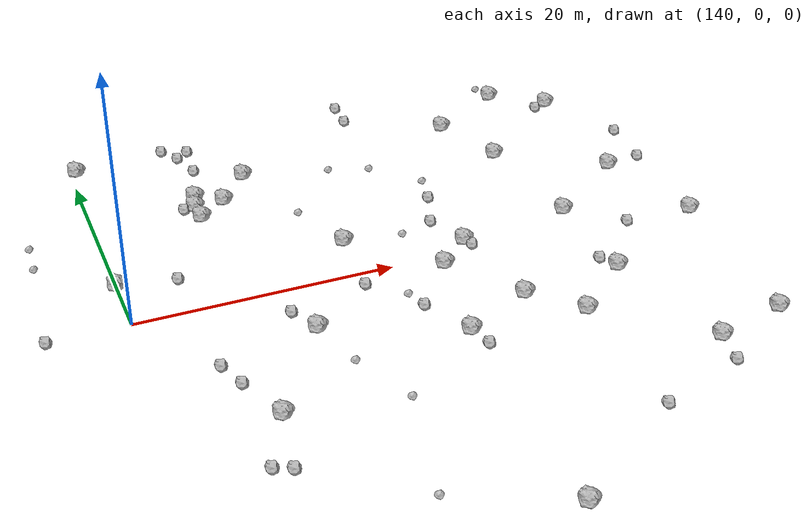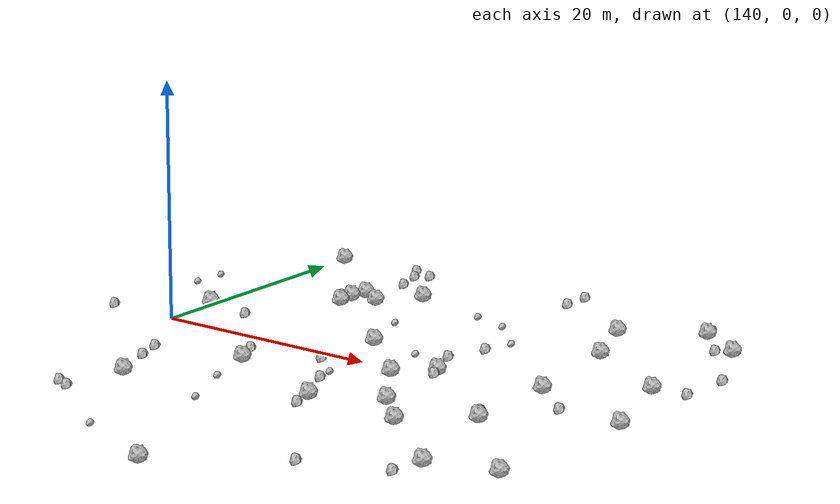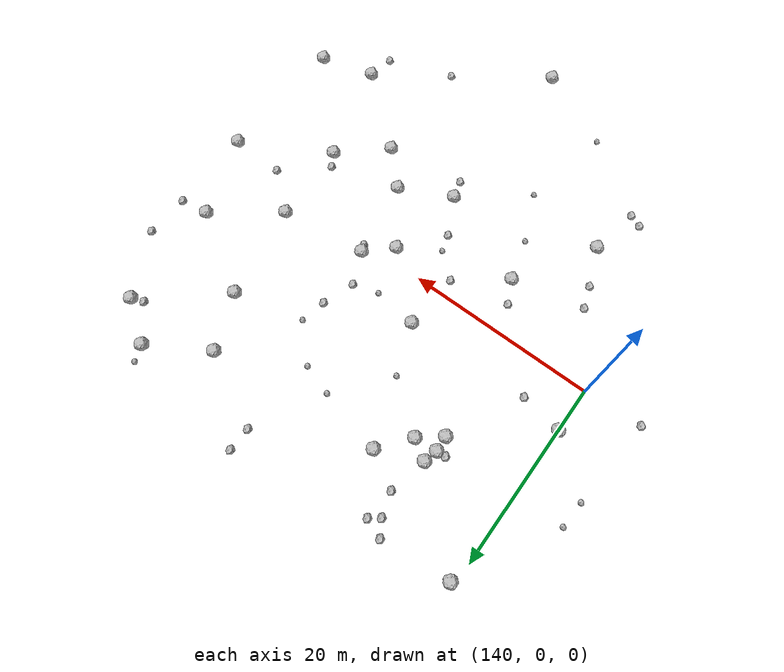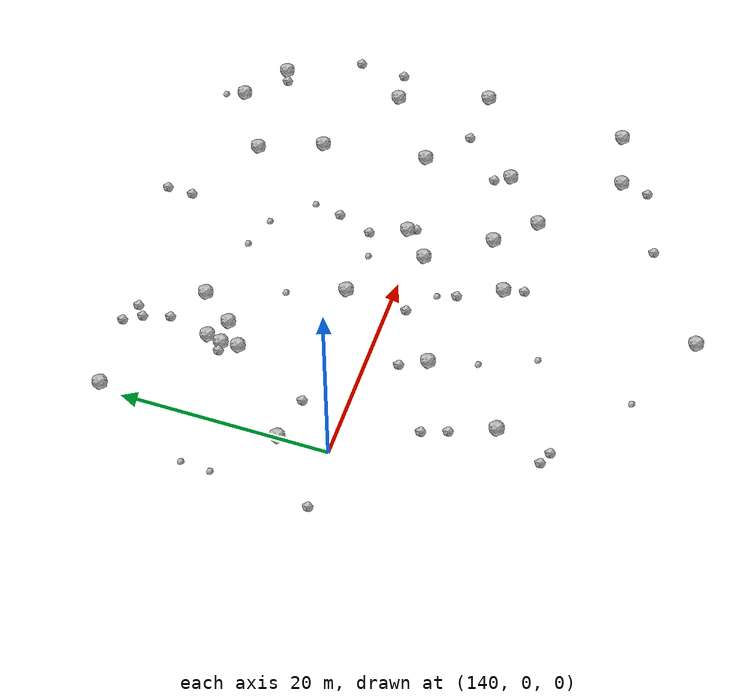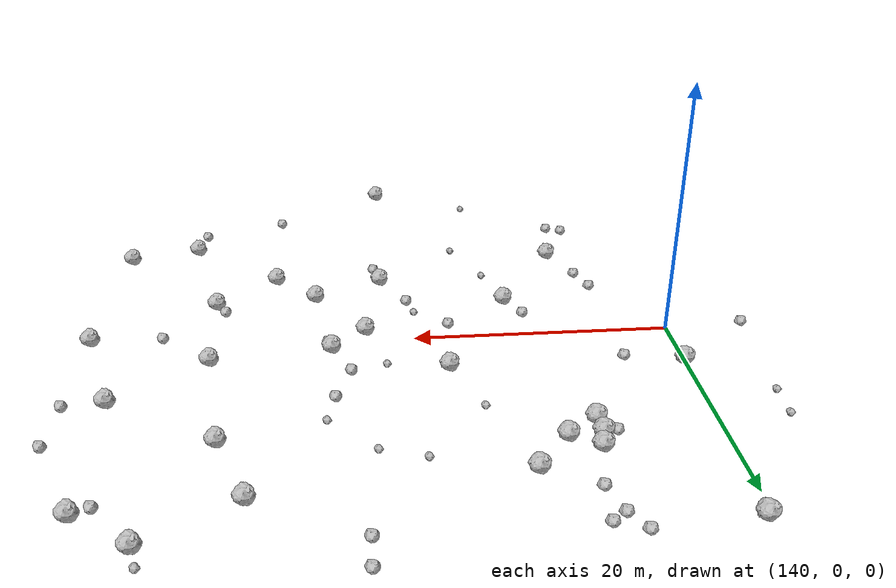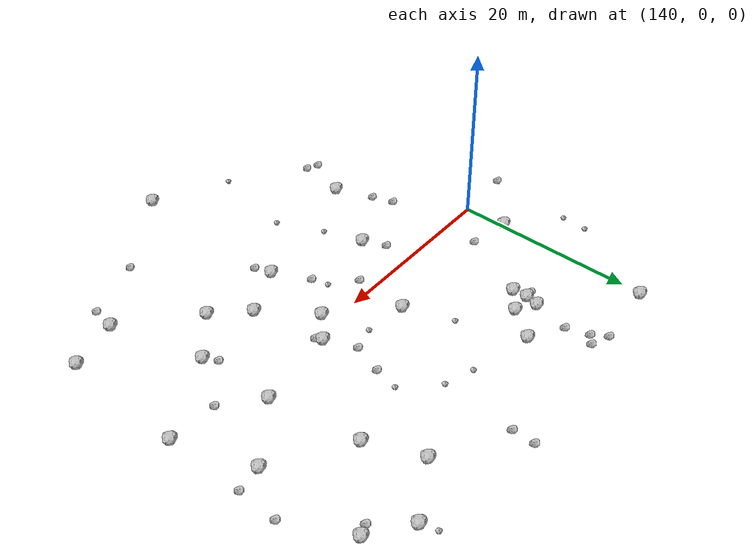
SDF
<sdf version="1.6">
 <world name="default">
  <include><uri>model://sun</uri></include>
  <model name="rock1_4_1">
   <include><uri>model://rock1</uri><pose>140.56441741457215 22.25514250354051 0.5 0 0 0</pose></include>
  </model>
  <model name="rock1_4_2">
   <include><uri>model://rock1</uri><pose>157.72013499520767 4.399640665400902 0.5 0 0 0</pose></include>
  </model>
  <model name="rock1_4_3">
   <include><uri>model://rock1</uri><pose>182.21821459642618 19.112519408184966 0.5 0 0 0</pose></include>
  </model>
  <model name="rock1_4_4">
   <include><uri>model://rock1</uri><pose>185.04037900265757 -1.222657176741091 0.5 0 0 0</pose></include>
  </model>
  <model name="rock1_4_5">
   <include><uri>model://rock1</uri><pose>175.5911940412422 2.3325353961741015 0.5 0 0 0</pose></include>
  </model>
  <model name="rock1_4_6">
   <include><uri>model://rock1</uri><pose>171.12154247944684 -10.410180588922394 0.5 0 0 0</pose></include>
  </model>
  <model name="rock1_4_7">
   <include><uri>model://rock1</uri><pose>167.76461552043438 -6.974346166152895 0.5 0 0 0</pose></include>
  </model>
  <model name="rock1_4_8">
   <include><uri>model://rock1</uri><pose>148.43413850869428 11.755094583001288 0.5 0 0 0</pose></include>
  </model>
  <model name="rock1_4_9">
   <include><uri>model://rock1</uri><pose>140.0652624489061 4.846271860552065 0.5 0 0 0</pose></include>
  </model>
  <model name="rock1_4_10">
   <include><uri>model://rock1</uri><pose>182.2811284354767 7.3094858080277945 0.5 0 0 0</pose></include>
  </model>
  <model name="rock1_4_11">
   <include><uri>model://rock1</uri><pose>150.7459319751643 13.579216060300737 0.5 0 0 0</pose></include>
  </model>
  <model name="rock1_4_12">
   <include><uri>model://rock1</uri><pose>178.04170420232413 22.109989522310748 0.5 0 0 0</pose></include>
  </model>
  <model name="rock1_4_13">
   <include><uri>model://rock1</uri><pose>161.8920614330587 -28.309732240538295 0.5 0 0 0</pose></include>
  </model>
  <model name="rock1_4_14">
   <include><uri>model://rock1</uri><pose>153.29084857501618 16.790729534371096 0.5 0 0 0</pose></include>
  </model>
  <model name="rock1_4_15">
   <include><uri>model://rock1</uri><pose>162.32023500412092 -9.619730425140165 0.5 0 0 0</pose></include>
  </model>
  <model name="rock1_4_16">
   <include><uri>model://rock1</uri><pose>175.83077715673159 -6.283447098943171 0.5 0 0 0</pose></include>
  </model>
  <model name="rock1_4_17">
   <include><uri>model://rock1</uri><pose>174.1297748115979 12.426552338744031 0.5 0 0 0</pose></include>
  </model>
  <model name="rock1_4_18">
   <include><uri>model://rock1</uri><pose>166.44003876197502 1.1843398874915287 0.5 0 0 0</pose></include>
  </model>
  <model name="rock1_4_19">
   <include><uri>model://rock1</uri><pose>148.33274438231933 13.397200857804677 0.5 0 0 0</pose></include>
  </model>
  <model name="rock1_4_20">
   <include><uri>model://rock1</uri><pose>147.03901794415785 -13.602338405992217 0.5 0 0 0</pose></include>
  </model>
  <model name="rock1_4_21">
   <include><uri>model://rock1</uri><pose>184.15493033429962 -15.242003602269868 0.5 0 0 0</pose></include>
  </model>
  <model name="rock1_4_22">
   <include><uri>model://rock1</uri><pose>178.48753369388402 -16.718383970291924 0.5 0 0 0</pose></include>
  </model>
  <model name="rock1_4_23">
   <include><uri>model://rock1</uri><pose>148.70438379604914 14.862919736527182 0.5 0 0 0</pose></include>
  </model>
  <model name="rock1_4_24">
   <include><uri>model://rock1</uri><pose>163.78468583913434 -1.2962551738112857 0.5 0 0 0</pose></include>
  </model>
  <model name="rock1_4_25">
   <include><uri>model://rock1</uri><pose>171.8082306174243 18.37982746185118 0.5 0 0 0</pose></include>
  </model>
  <model name="rock1_4_26">
   <include><uri>model://rock1</uri><pose>152.23670545693477 -5.442032233708048 0.5 0 0 0</pose></include>
  </model>
  <model name="rock2_4_0">
   <include><uri>model://rock2</uri><pose>171.1092182865654 -21.85473576009369 0.3 0 0 0</pose></include>
  </model>
  <model name="rock2_4_1">
   <include><uri>model://rock2</uri><pose>164.15098842692024 22.41219140161958 0.3 0 0 0</pose></include>
  </model>
  <model name="rock2_4_2">
   <include><uri>model://rock2</uri><pose>180.90329424209045 18.624903188804645 0.3 0 0 0</pose></include>
  </model>
  <model name="rock2_4_3">
   <include><uri>model://rock2</uri><pose>164.97760275392204 4.589116151021017 0.3 0 0 0</pose></include>
  </model>
  <model name="rock2_4_4">
   <include><uri>model://rock2</uri><pose>185.48142001465075 12.317117996589388 0.3 0 0 0</pose></include>
  </model>
  <model name="rock2_4_5">
   <include><uri>model://rock2</uri><pose>144.46678277613898 4.083851043569901 0.3 0 0 0</pose></include>
  </model>
  <model name="rock2_4_6">
   <include><uri>model://rock2</uri><pose>149.92522446209028 22.24374918598935 0.3 0 0 0</pose></include>
  </model>
  <model name="rock2_4_7">
   <include><uri>model://rock2</uri><pose>147.3459807700525 13.318263071289678 0.3 0 0 0</pose></include>
  </model>
  <model name="rock2_4_8">
   <include><uri>model://rock2</uri><pose>133.86212767552075 -0.22416512928648658 0.3 0 0 0</pose></include>
  </model>
  <model name="rock2_4_9">
   <include><uri>model://rock2</uri><pose>162.77327802908266 -11.511443485148828 0.3 0 0 0</pose></include>
  </model>
  <model name="rock2_4_10">
   <include><uri>model://rock2</uri><pose>144.72088306587963 -18.337792823028668 0.3 0 0 0</pose></include>
  </model>
  <model name="rock2_4_11">
   <include><uri>model://rock2</uri><pose>157.18951827424593 -1.6464542742544985 0.3 0 0 0</pose></include>
  </model>
  <model name="rock2_4_12">
   <include><uri>model://rock2</uri><pose>177.90256921031582 -19.433548342493623 0.3 0 0 0</pose></include>
  </model>
  <model name="rock2_4_13">
   <include><uri>model://rock2</uri><pose>151.02476167837565 -2.970322879042154 0.3 0 0 0</pose></include>
  </model>
  <model name="rock2_4_14">
   <include><uri>model://rock2</uri><pose>144.58057763256937 -7.1784545379114455 0.3 0 0 0</pose></include>
  </model>
  <model name="rock2_4_15">
   <include><uri>model://rock2</uri><pose>166.69992209375775 0.43226588974663116 0.3 0 0 0</pose></include>
  </model>
  <model name="rock2_4_16">
   <include><uri>model://rock2</uri><pose>185.19016076358974 7.737700302162523 0.3 0 0 0</pose></include>
  </model>
  <model name="rock2_4_17">
   <include><uri>model://rock2</uri><pose>147.8902439720004 23.03712772604529 0.3 0 0 0</pose></include>
  </model>
  <model name="rock2_4_18">
   <include><uri>model://rock2</uri><pose>160.271282719759 -5.640545302092558 0.3 0 0 0</pose></include>
  </model>
  <model name="rock2_4_19">
   <include><uri>model://rock2</uri><pose>148.88024767540557 21.439847098166915 0.3 0 0 0</pose></include>
  </model>
  <model name="rock2_4_20">
   <include><uri>model://rock2</uri><pose>179.443363810614 -0.9950859714676952 0.3 0 0 0</pose></include>
  </model>
  <model name="rock2_4_21">
   <include><uri>model://rock2</uri><pose>146.01224244667932 -18.894021788743096 0.3 0 0 0</pose></include>
  </model>
  <model name="rock2_4_22">
   <include><uri>model://rock2</uri><pose>174.96789854859026 -4.8459249866626095 0.3 0 0 0</pose></include>
  </model>
  <model name="rock2_4_23">
   <include><uri>model://rock2</uri><pose>166.15969470710505 7.948466011932396 0.3 0 0 0</pose></include>
  </model>
  <model name="rock2_4_24">
   <include><uri>model://rock2</uri><pose>145.38589651454808 -9.520609974661344 0.3 0 0 0</pose></include>
  </model>
  <model name="rock2_4_25">
   <include><uri>model://rock2</uri><pose>149.61724747565233 18.936787742702215 0.3 0 0 0</pose></include>
  </model>
  <model name="rock2_4_26">
   <include><uri>model://rock2</uri><pose>164.21030149571857 24.922232379176137 0.3 0 0 0</pose></include>
  </model>
  <model name="rock3_4_0">
   <include><uri>model://rock3</uri><pose>134.68336706591168 9.286337672115906 0.2 0 0 0</pose></include>
  </model>
  <model name="rock3_4_1">
   <include><uri>model://rock3</uri><pose>177.42485303668298 23.835064390501053 0.2 0 0 0</pose></include>
  </model>
  <model name="rock3_4_2">
   <include><uri>model://rock3</uri><pose>155.7054514527964 9.669686824830812 0.2 0 0 0</pose></include>
  </model>
  <model name="rock3_4_3">
   <include><uri>model://rock3</uri><pose>159.73481852694698 -3.8995740280113935 0.2 0 0 0</pose></include>
  </model>
  <model name="rock3_4_4">
   <include><uri>model://rock3</uri><pose>153.54630166555685 -24.430715774429913 0.2 0 0 0</pose></include>
  </model>
  <model name="rock3_4_5">
   <include><uri>model://rock3</uri><pose>163.35860678814765 14.068183468554842 0.2 0 0 0</pose></include>
  </model>
  <model name="rock3_4_6">
   <include><uri>model://rock3</uri><pose>160.1351913155609 15.112609563068588 0.2 0 0 0</pose></include>
  </model>
  <model name="rock3_4_7">
   <include><uri>model://rock3</uri><pose>155.58489910145977 -14.975731273619015 0.2 0 0 0</pose></include>
  </model>
  <model name="rock3_4_8">
   <include><uri>model://rock3</uri><pose>153.40359928581495 -9.909093597209036 0.2 0 0 0</pose></include>
  </model>
  <model name="rock3_4_9">
   <include><uri>model://rock3</uri><pose>162.27516415725123 3.757589119242766 0.2 0 0 0</pose></include>
  </model>
  <model name="rock3_4_10">
   <include><uri>model://rock3</uri><pose>166.7313239366828 10.59325669635642 0.2 0 0 0</pose></include>
  </model>
  <model name="rock3_4_11">
   <include><uri>model://rock3</uri><pose>134.85462024862997 12.139328107389787 0.2 0 0 0</pose></include>
  </model>
 </world>
</sdf>
